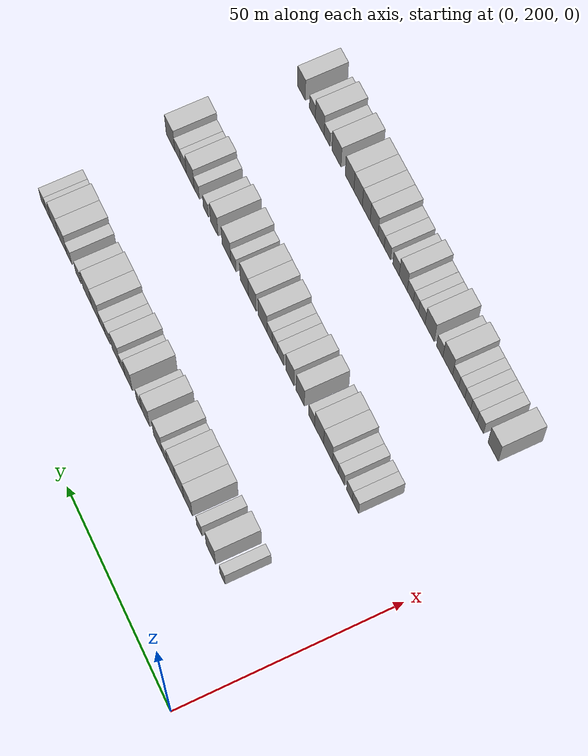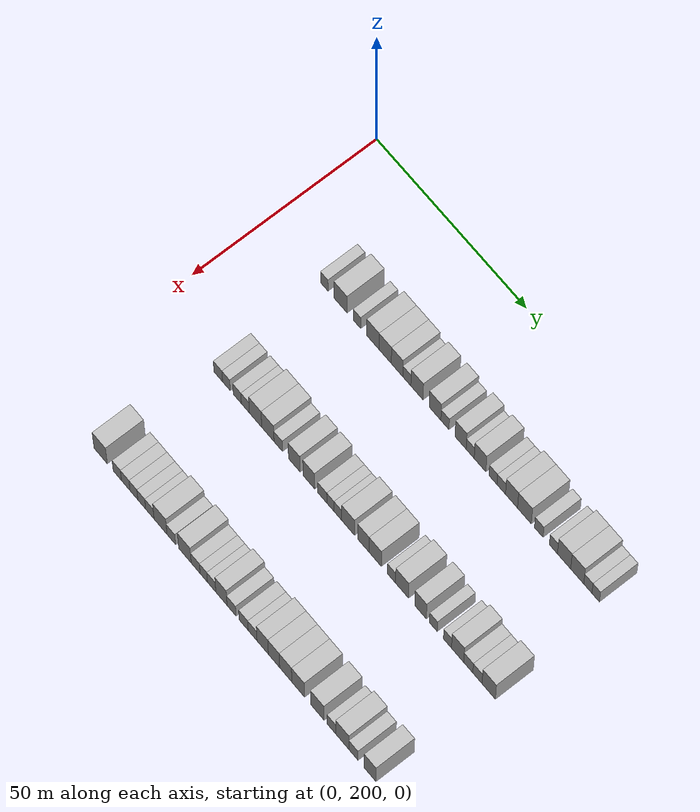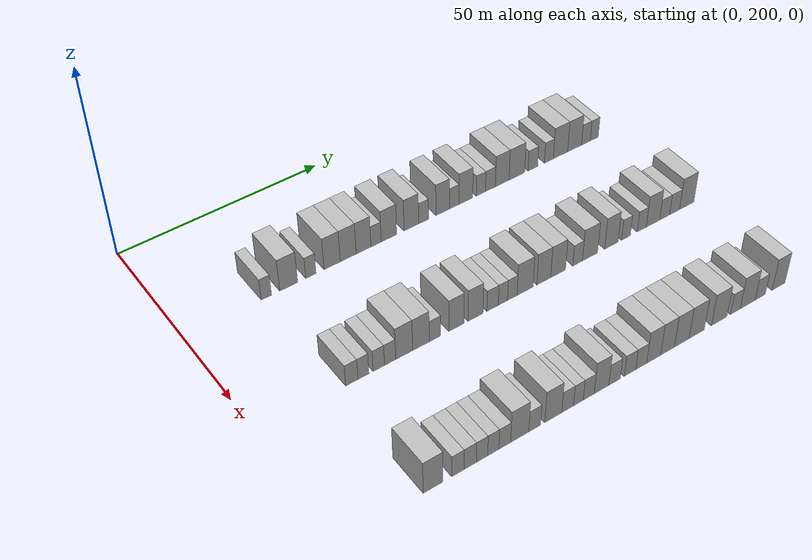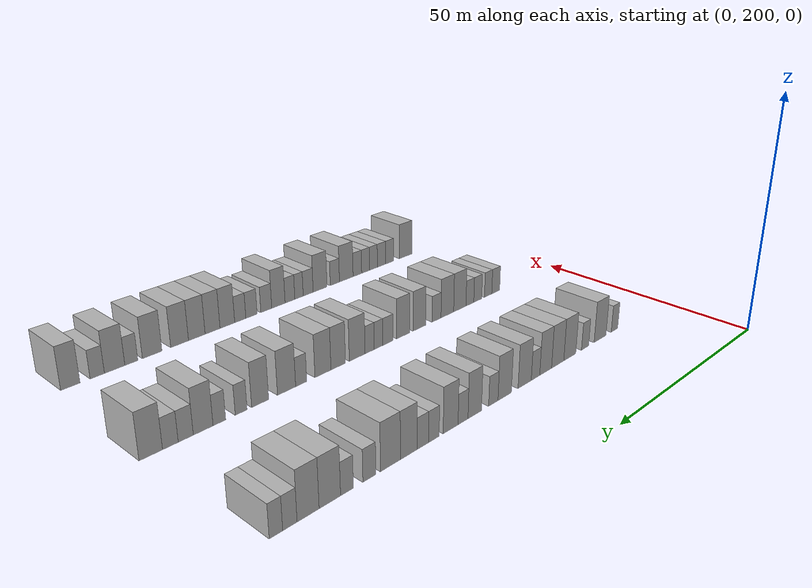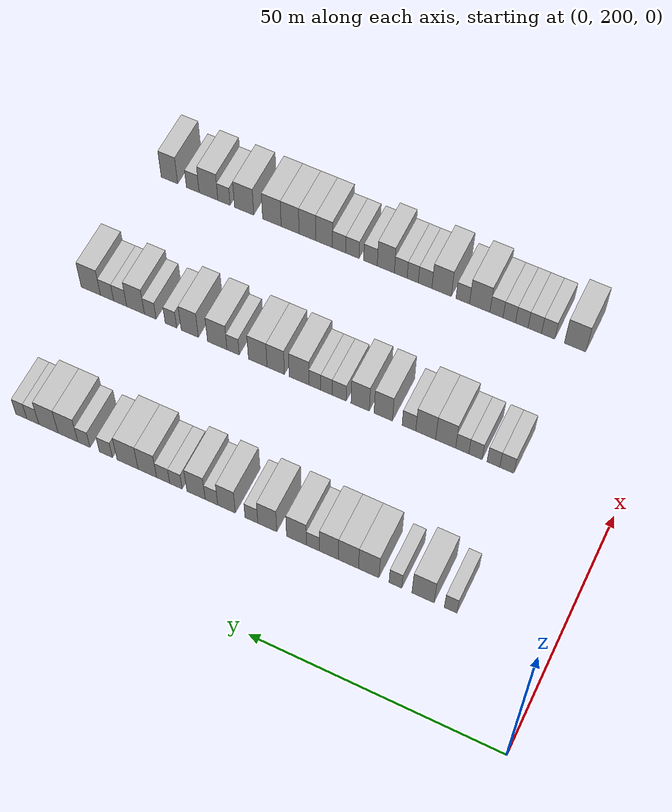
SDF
<sdf version="1.6">
 <world name="default">
  <model name="building_167">
   <static>1</static>
   <pose>25.0000 219.5686 0 0.000000 0.000000 0.000000</pose>
   <link name="link">
    <pose>0 0 3.00 0 0 0</pose>
    <collision name="collision"><geometry><box><size>10.0000 2.4940 6.0000</size></box></geometry></collision>
    <visual name="visual">
     <cast_shadows>0</cast_shadows>
     <geometry><box><size>10.0000 2.4940 6.0000</size></box></geometry>
     <material>
      <script>
       <uri>model://HANNAS_wall/materials/scripts</uri>
       <uri>model://HANNAS_wall/materials/textures</uri>
       <name>vrc/HANNAS_wall</name>
      </script>
     </material>
    </visual>
   </link>
  </model>
  <model name="building_168">
   <static>1</static>
   <pose>25.0000 225.0150 0 0.000000 0.000000 0.000000</pose>
   <link name="link">
    <pose>0 0 4.50 0 0 0</pose>
    <collision name="collision"><geometry><box><size>10.0000 4.3989 9.0000</size></box></geometry></collision>
    <visual name="visual">
     <cast_shadows>0</cast_shadows>
     <geometry><box><size>10.0000 4.3989 9.0000</size></box></geometry>
     <material>
      <script>
       <uri>model://HANNAS_wall/materials/scripts</uri>
       <uri>model://HANNAS_wall/materials/textures</uri>
       <name>vrc/HANNAS_wall</name>
      </script>
     </material>
    </visual>
   </link>
  </model>
  <model name="building_169">
   <static>1</static>
   <pose>25.0000 230.4870 0 0.000000 0.000000 0.000000</pose>
   <link name="link">
    <pose>0 0 3.00 0 0 0</pose>
    <collision name="collision"><geometry><box><size>10.0000 2.5451 6.0000</size></box></geometry></collision>
    <visual name="visual">
     <cast_shadows>0</cast_shadows>
     <geometry><box><size>10.0000 2.5451 6.0000</size></box></geometry>
     <material>
      <script>
       <uri>model://HANNAS_wall/materials/scripts</uri>
       <uri>model://HANNAS_wall/materials/textures</uri>
       <name>vrc/HANNAS_wall</name>
      </script>
     </material>
    </visual>
   </link>
  </model>
  <model name="building_170">
   <static>1</static>
   <pose>25.0000 235.8158 0 0.000000 0.000000 0.000000</pose>
   <link name="link">
    <pose>0 0 4.50 0 0 0</pose>
    <collision name="collision"><geometry><box><size>10.0000 4.1124 9.0000</size></box></geometry></collision>
    <visual name="visual">
     <cast_shadows>0</cast_shadows>
     <geometry><box><size>10.0000 4.1124 9.0000</size></box></geometry>
     <material>
      <script>
       <uri>model://HANNAS_wall/materials/scripts</uri>
       <uri>model://HANNAS_wall/materials/textures</uri>
       <name>vrc/HANNAS_wall</name>
      </script>
     </material>
    </visual>
   </link>
  </model>
  <model name="building_171">
   <static>1</static>
   <pose>25.0000 239.9022 0 0.000000 0.000000 0.000000</pose>
   <link name="link">
    <pose>0 0 4.50 0 0 0</pose>
    <collision name="collision"><geometry><box><size>10.0000 4.0605 9.0000</size></box></geometry></collision>
    <visual name="visual">
     <cast_shadows>0</cast_shadows>
     <geometry><box><size>10.0000 4.0605 9.0000</size></box></geometry>
     <material>
      <script>
       <uri>model://HANNAS_wall/materials/scripts</uri>
       <uri>model://HANNAS_wall/materials/textures</uri>
       <name>vrc/HANNAS_wall</name>
      </script>
     </material>
    </visual>
   </link>
  </model>
  <model name="building_172">
   <static>1</static>
   <pose>25.0000 243.8389 0 0.000000 0.000000 0.000000</pose>
   <link name="link">
    <pose>0 0 4.50 0 0 0</pose>
    <collision name="collision"><geometry><box><size>10.0000 3.8128 9.0000</size></box></geometry></collision>
    <visual name="visual">
     <cast_shadows>0</cast_shadows>
     <geometry><box><size>10.0000 3.8128 9.0000</size></box></geometry>
     <material>
      <script>
       <uri>model://HANNAS_wall/materials/scripts</uri>
       <uri>model://HANNAS_wall/materials/textures</uri>
       <name>vrc/HANNAS_wall</name>
      </script>
     </material>
    </visual>
   </link>
  </model>
  <model name="building_173">
   <static>1</static>
   <pose>25.0000 247.0756 0 0.000000 0.000000 0.000000</pose>
   <link name="link">
    <pose>0 0 3.00 0 0 0</pose>
    <collision name="collision"><geometry><box><size>10.0000 2.6605 6.0000</size></box></geometry></collision>
    <visual name="visual">
     <cast_shadows>0</cast_shadows>
     <geometry><box><size>10.0000 2.6605 6.0000</size></box></geometry>
     <material>
      <script>
       <uri>model://HANNAS_wall/materials/scripts</uri>
       <uri>model://HANNAS_wall/materials/textures</uri>
       <name>vrc/HANNAS_wall</name>
      </script>
     </material>
    </visual>
   </link>
  </model>
  <model name="building_174">
   <static>1</static>
   <pose>25.0000 250.4278 0 0.000000 0.000000 0.000000</pose>
   <link name="link">
    <pose>0 0 4.50 0 0 0</pose>
    <collision name="collision"><geometry><box><size>10.0000 4.0439 9.0000</size></box></geometry></collision>
    <visual name="visual">
     <cast_shadows>0</cast_shadows>
     <geometry><box><size>10.0000 4.0439 9.0000</size></box></geometry>
     <material>
      <script>
       <uri>model://HANNAS_wall/materials/scripts</uri>
       <uri>model://HANNAS_wall/materials/textures</uri>
       <name>vrc/HANNAS_wall</name>
      </script>
     </material>
    </visual>
   </link>
  </model>
  <model name="building_175">
   <static>1</static>
   <pose>25.0000 256.3951 0 0.000000 0.000000 0.000000</pose>
   <link name="link">
    <pose>0 0 4.50 0 0 0</pose>
    <collision name="collision"><geometry><box><size>10.0000 3.8908 9.0000</size></box></geometry></collision>
    <visual name="visual">
     <cast_shadows>0</cast_shadows>
     <geometry><box><size>10.0000 3.8908 9.0000</size></box></geometry>
     <material>
      <script>
       <uri>model://HANNAS_wall/materials/scripts</uri>
       <uri>model://HANNAS_wall/materials/textures</uri>
       <name>vrc/HANNAS_wall</name>
      </script>
     </material>
    </visual>
   </link>
  </model>
  <model name="building_176">
   <static>1</static>
   <pose>25.0000 259.6638 0 0.000000 0.000000 0.000000</pose>
   <link name="link">
    <pose>0 0 3.00 0 0 0</pose>
    <collision name="collision"><geometry><box><size>10.0000 2.6465 6.0000</size></box></geometry></collision>
    <visual name="visual">
     <cast_shadows>0</cast_shadows>
     <geometry><box><size>10.0000 2.6465 6.0000</size></box></geometry>
     <material>
      <script>
       <uri>model://HANNAS_wall/materials/scripts</uri>
       <uri>model://HANNAS_wall/materials/textures</uri>
       <name>vrc/HANNAS_wall</name>
      </script>
     </material>
    </visual>
   </link>
  </model>
  <model name="building_177">
   <static>1</static>
   <pose>25.0000 264.8123 0 0.000000 0.000000 0.000000</pose>
   <link name="link">
    <pose>0 0 4.50 0 0 0</pose>
    <collision name="collision"><geometry><box><size>10.0000 3.6504 9.0000</size></box></geometry></collision>
    <visual name="visual">
     <cast_shadows>0</cast_shadows>
     <geometry><box><size>10.0000 3.6504 9.0000</size></box></geometry>
     <material>
      <script>
       <uri>model://HANNAS_wall/materials/scripts</uri>
       <uri>model://HANNAS_wall/materials/textures</uri>
       <name>vrc/HANNAS_wall</name>
      </script>
     </material>
    </visual>
   </link>
  </model>
  <model name="building_178">
   <static>1</static>
   <pose>25.0000 267.9505 0 0.000000 0.000000 0.000000</pose>
   <link name="link">
    <pose>0 0 3.00 0 0 0</pose>
    <collision name="collision"><geometry><box><size>10.0000 2.6260 6.0000</size></box></geometry></collision>
    <visual name="visual">
     <cast_shadows>0</cast_shadows>
     <geometry><box><size>10.0000 2.6260 6.0000</size></box></geometry>
     <material>
      <script>
       <uri>model://HANNAS_wall/materials/scripts</uri>
       <uri>model://HANNAS_wall/materials/textures</uri>
       <name>vrc/HANNAS_wall</name>
      </script>
     </material>
    </visual>
   </link>
  </model>
  <model name="building_179">
   <static>1</static>
   <pose>25.0000 271.1804 0 0.000000 0.000000 0.000000</pose>
   <link name="link">
    <pose>0 0 4.50 0 0 0</pose>
    <collision name="collision"><geometry><box><size>10.0000 3.8338 9.0000</size></box></geometry></collision>
    <visual name="visual">
     <cast_shadows>0</cast_shadows>
     <geometry><box><size>10.0000 3.8338 9.0000</size></box></geometry>
     <material>
      <script>
       <uri>model://HANNAS_wall/materials/scripts</uri>
       <uri>model://HANNAS_wall/materials/textures</uri>
       <name>vrc/HANNAS_wall</name>
      </script>
     </material>
    </visual>
   </link>
  </model>
  <model name="building_180">
   <static>1</static>
   <pose>25.0000 275.4002 0 0.000000 0.000000 0.000000</pose>
   <link name="link">
    <pose>0 0 3.00 0 0 0</pose>
    <collision name="collision"><geometry><box><size>10.0000 2.6059 6.0000</size></box></geometry></collision>
    <visual name="visual">
     <cast_shadows>0</cast_shadows>
     <geometry><box><size>10.0000 2.6059 6.0000</size></box></geometry>
     <material>
      <script>
       <uri>model://HANNAS_wall/materials/scripts</uri>
       <uri>model://HANNAS_wall/materials/textures</uri>
       <name>vrc/HANNAS_wall</name>
      </script>
     </material>
    </visual>
   </link>
  </model>
  <model name="building_181">
   <static>1</static>
   <pose>25.0000 278.0918 0 0.000000 0.000000 0.000000</pose>
   <link name="link">
    <pose>0 0 3.00 0 0 0</pose>
    <collision name="collision"><geometry><box><size>10.0000 2.7773 6.0000</size></box></geometry></collision>
    <visual name="visual">
     <cast_shadows>0</cast_shadows>
     <geometry><box><size>10.0000 2.7773 6.0000</size></box></geometry>
     <material>
      <script>
       <uri>model://HANNAS_wall/materials/scripts</uri>
       <uri>model://HANNAS_wall/materials/textures</uri>
       <name>vrc/HANNAS_wall</name>
      </script>
     </material>
    </visual>
   </link>
  </model>
  <model name="building_182">
   <static>1</static>
   <pose>25.0000 281.4405 0 0.000000 0.000000 0.000000</pose>
   <link name="link">
    <pose>0 0 4.50 0 0 0</pose>
    <collision name="collision"><geometry><box><size>10.0000 3.9202 9.0000</size></box></geometry></collision>
    <visual name="visual">
     <cast_shadows>0</cast_shadows>
     <geometry><box><size>10.0000 3.9202 9.0000</size></box></geometry>
     <material>
      <script>
       <uri>model://HANNAS_wall/materials/scripts</uri>
       <uri>model://HANNAS_wall/materials/textures</uri>
       <name>vrc/HANNAS_wall</name>
      </script>
     </material>
    </visual>
   </link>
  </model>
  <model name="building_183">
   <static>1</static>
   <pose>25.0000 285.6413 0 0.000000 0.000000 0.000000</pose>
   <link name="link">
    <pose>0 0 4.50 0 0 0</pose>
    <collision name="collision"><geometry><box><size>10.0000 4.4814 9.0000</size></box></geometry></collision>
    <visual name="visual">
     <cast_shadows>0</cast_shadows>
     <geometry><box><size>10.0000 4.4814 9.0000</size></box></geometry>
     <material>
      <script>
       <uri>model://HANNAS_wall/materials/scripts</uri>
       <uri>model://HANNAS_wall/materials/textures</uri>
       <name>vrc/HANNAS_wall</name>
      </script>
     </material>
    </visual>
   </link>
  </model>
  <model name="building_184">
   <static>1</static>
   <pose>25.0000 290.2833 0 0.000000 0.000000 0.000000</pose>
   <link name="link">
    <pose>0 0 3.00 0 0 0</pose>
    <collision name="collision"><geometry><box><size>10.0000 2.8026 6.0000</size></box></geometry></collision>
    <visual name="visual">
     <cast_shadows>0</cast_shadows>
     <geometry><box><size>10.0000 2.8026 6.0000</size></box></geometry>
     <material>
      <script>
       <uri>model://HANNAS_wall/materials/scripts</uri>
       <uri>model://HANNAS_wall/materials/textures</uri>
       <name>vrc/HANNAS_wall</name>
      </script>
     </material>
    </visual>
   </link>
  </model>
  <model name="building_185">
   <static>1</static>
   <pose>25.0000 295.0021 0 0.000000 0.000000 0.000000</pose>
   <link name="link">
    <pose>0 0 3.00 0 0 0</pose>
    <collision name="collision"><geometry><box><size>10.0000 2.6349 6.0000</size></box></geometry></collision>
    <visual name="visual">
     <cast_shadows>0</cast_shadows>
     <geometry><box><size>10.0000 2.6349 6.0000</size></box></geometry>
     <material>
      <script>
       <uri>model://HANNAS_wall/materials/scripts</uri>
       <uri>model://HANNAS_wall/materials/textures</uri>
       <name>vrc/HANNAS_wall</name>
      </script>
     </material>
    </visual>
   </link>
  </model>
  <model name="building_186">
   <static>1</static>
   <pose>25.0000 298.4520 0 0.000000 0.000000 0.000000</pose>
   <link name="link">
    <pose>0 0 4.50 0 0 0</pose>
    <collision name="collision"><geometry><box><size>10.0000 4.2648 9.0000</size></box></geometry></collision>
    <visual name="visual">
     <cast_shadows>0</cast_shadows>
     <geometry><box><size>10.0000 4.2648 9.0000</size></box></geometry>
     <material>
      <script>
       <uri>model://HANNAS_wall/materials/scripts</uri>
       <uri>model://HANNAS_wall/materials/textures</uri>
       <name>vrc/HANNAS_wall</name>
      </script>
     </material>
    </visual>
   </link>
  </model>
  <model name="building_187">
   <static>1</static>
   <pose>25.0000 302.6818 0 0.000000 0.000000 0.000000</pose>
   <link name="link">
    <pose>0 0 4.50 0 0 0</pose>
    <collision name="collision"><geometry><box><size>10.0000 4.1949 9.0000</size></box></geometry></collision>
    <visual name="visual">
     <cast_shadows>0</cast_shadows>
     <geometry><box><size>10.0000 4.1949 9.0000</size></box></geometry>
     <material>
      <script>
       <uri>model://HANNAS_wall/materials/scripts</uri>
       <uri>model://HANNAS_wall/materials/textures</uri>
       <name>vrc/HANNAS_wall</name>
      </script>
     </material>
    </visual>
   </link>
  </model>
  <model name="building_188">
   <static>1</static>
   <pose>25.0000 306.1009 0 0.000000 0.000000 0.000000</pose>
   <link name="link">
    <pose>0 0 3.00 0 0 0</pose>
    <collision name="collision"><geometry><box><size>10.0000 2.6432 6.0000</size></box></geometry></collision>
    <visual name="visual">
     <cast_shadows>0</cast_shadows>
     <geometry><box><size>10.0000 2.6432 6.0000</size></box></geometry>
     <material>
      <script>
       <uri>model://HANNAS_wall/materials/scripts</uri>
       <uri>model://HANNAS_wall/materials/textures</uri>
       <name>vrc/HANNAS_wall</name>
      </script>
     </material>
    </visual>
   </link>
  </model>
  <model name="building_189">
   <static>1</static>
   <pose>25.0000 308.6357 0 0.000000 0.000000 0.000000</pose>
   <link name="link">
    <pose>0 0 3.00 0 0 0</pose>
    <collision name="collision"><geometry><box><size>10.0000 2.4263 6.0000</size></box></geometry></collision>
    <visual name="visual">
     <cast_shadows>0</cast_shadows>
     <geometry><box><size>10.0000 2.4263 6.0000</size></box></geometry>
     <material>
      <script>
       <uri>model://HANNAS_wall/materials/scripts</uri>
       <uri>model://HANNAS_wall/materials/textures</uri>
       <name>vrc/HANNAS_wall</name>
      </script>
     </material>
    </visual>
   </link>
  </model>
  <model name="building_394">
   <static>1</static>
   <pose>55.0000 221.5178 0 0.000000 0.000000 0.000000</pose>
   <link name="link">
    <pose>0 0 3.00 0 0 0</pose>
    <collision name="collision"><geometry><box><size>10.0000 2.8680 6.0000</size></box></geometry></collision>
    <visual name="visual">
     <cast_shadows>0</cast_shadows>
     <geometry><box><size>10.0000 2.8680 6.0000</size></box></geometry>
     <material>
      <script>
       <uri>model://HANNAS_wall/materials/scripts</uri>
       <uri>model://HANNAS_wall/materials/textures</uri>
       <name>vrc/HANNAS_wall</name>
      </script>
     </material>
    </visual>
   </link>
  </model>
  <model name="building_395">
   <static>1</static>
   <pose>55.0000 224.2567 0 0.000000 0.000000 0.000000</pose>
   <link name="link">
    <pose>0 0 3.00 0 0 0</pose>
    <collision name="collision"><geometry><box><size>10.0000 2.6098 6.0000</size></box></geometry></collision>
    <visual name="visual">
     <cast_shadows>0</cast_shadows>
     <geometry><box><size>10.0000 2.6098 6.0000</size></box></geometry>
     <material>
      <script>
       <uri>model://HANNAS_wall/materials/scripts</uri>
       <uri>model://HANNAS_wall/materials/textures</uri>
       <name>vrc/HANNAS_wall</name>
      </script>
     </material>
    </visual>
   </link>
  </model>
  <model name="building_396">
   <static>1</static>
   <pose>55.0000 227.9256 0 0.000000 0.000000 0.000000</pose>
   <link name="link">
    <pose>0 0 3.00 0 0 0</pose>
    <collision name="collision"><geometry><box><size>10.0000 2.7281 6.0000</size></box></geometry></collision>
    <visual name="visual">
     <cast_shadows>0</cast_shadows>
     <geometry><box><size>10.0000 2.7281 6.0000</size></box></geometry>
     <material>
      <script>
       <uri>model://HANNAS_wall/materials/scripts</uri>
       <uri>model://HANNAS_wall/materials/textures</uri>
       <name>vrc/HANNAS_wall</name>
      </script>
     </material>
    </visual>
   </link>
  </model>
  <model name="building_397">
   <static>1</static>
   <pose>55.0000 230.6357 0 0.000000 0.000000 0.000000</pose>
   <link name="link">
    <pose>0 0 3.00 0 0 0</pose>
    <collision name="collision"><geometry><box><size>10.0000 2.6922 6.0000</size></box></geometry></collision>
    <visual name="visual">
     <cast_shadows>0</cast_shadows>
     <geometry><box><size>10.0000 2.6922 6.0000</size></box></geometry>
     <material>
      <script>
       <uri>model://HANNAS_wall/materials/scripts</uri>
       <uri>model://HANNAS_wall/materials/textures</uri>
       <name>vrc/HANNAS_wall</name>
      </script>
     </material>
    </visual>
   </link>
  </model>
  <model name="building_398">
   <static>1</static>
   <pose>55.0000 234.0388 0 0.000000 0.000000 0.000000</pose>
   <link name="link">
    <pose>0 0 4.50 0 0 0</pose>
    <collision name="collision"><geometry><box><size>10.0000 4.1140 9.0000</size></box></geometry></collision>
    <visual name="visual">
     <cast_shadows>0</cast_shadows>
     <geometry><box><size>10.0000 4.1140 9.0000</size></box></geometry>
     <material>
      <script>
       <uri>model://HANNAS_wall/materials/scripts</uri>
       <uri>model://HANNAS_wall/materials/textures</uri>
       <name>vrc/HANNAS_wall</name>
      </script>
     </material>
    </visual>
   </link>
  </model>
  <model name="building_399">
   <static>1</static>
   <pose>55.0000 238.1542 0 0.000000 0.000000 0.000000</pose>
   <link name="link">
    <pose>0 0 4.50 0 0 0</pose>
    <collision name="collision"><geometry><box><size>10.0000 4.1167 9.0000</size></box></geometry></collision>
    <visual name="visual">
     <cast_shadows>0</cast_shadows>
     <geometry><box><size>10.0000 4.1167 9.0000</size></box></geometry>
     <material>
      <script>
       <uri>model://HANNAS_wall/materials/scripts</uri>
       <uri>model://HANNAS_wall/materials/textures</uri>
       <name>vrc/HANNAS_wall</name>
      </script>
     </material>
    </visual>
   </link>
  </model>
  <model name="building_400">
   <static>1</static>
   <pose>55.0000 241.6304 0 0.000000 0.000000 0.000000</pose>
   <link name="link">
    <pose>0 0 3.00 0 0 0</pose>
    <collision name="collision"><geometry><box><size>10.0000 2.8357 6.0000</size></box></geometry></collision>
    <visual name="visual">
     <cast_shadows>0</cast_shadows>
     <geometry><box><size>10.0000 2.8357 6.0000</size></box></geometry>
     <material>
      <script>
       <uri>model://HANNAS_wall/materials/scripts</uri>
       <uri>model://HANNAS_wall/materials/textures</uri>
       <name>vrc/HANNAS_wall</name>
      </script>
     </material>
    </visual>
   </link>
  </model>
  <model name="building_401">
   <static>1</static>
   <pose>55.0000 246.9791 0 0.000000 0.000000 0.000000</pose>
   <link name="link">
    <pose>0 0 4.50 0 0 0</pose>
    <collision name="collision"><geometry><box><size>10.0000 3.8617 9.0000</size></box></geometry></collision>
    <visual name="visual">
     <cast_shadows>0</cast_shadows>
     <geometry><box><size>10.0000 3.8617 9.0000</size></box></geometry>
     <material>
      <script>
       <uri>model://HANNAS_wall/materials/scripts</uri>
       <uri>model://HANNAS_wall/materials/textures</uri>
       <name>vrc/HANNAS_wall</name>
      </script>
     </material>
    </visual>
   </link>
  </model>
  <model name="building_402">
   <static>1</static>
   <pose>55.0000 251.8341 0 0.000000 0.000000 0.000000</pose>
   <link name="link">
    <pose>0 0 4.50 0 0 0</pose>
    <collision name="collision"><geometry><box><size>10.0000 3.8484 9.0000</size></box></geometry></collision>
    <visual name="visual">
     <cast_shadows>0</cast_shadows>
     <geometry><box><size>10.0000 3.8484 9.0000</size></box></geometry>
     <material>
      <script>
       <uri>model://HANNAS_wall/materials/scripts</uri>
       <uri>model://HANNAS_wall/materials/textures</uri>
       <name>vrc/HANNAS_wall</name>
      </script>
     </material>
    </visual>
   </link>
  </model>
  <model name="building_403">
   <static>1</static>
   <pose>55.0000 256.2528 0 0.000000 0.000000 0.000000</pose>
   <link name="link">
    <pose>0 0 3.00 0 0 0</pose>
    <collision name="collision"><geometry><box><size>10.0000 2.9889 6.0000</size></box></geometry></collision>
    <visual name="visual">
     <cast_shadows>0</cast_shadows>
     <geometry><box><size>10.0000 2.9889 6.0000</size></box></geometry>
     <material>
      <script>
       <uri>model://HANNAS_wall/materials/scripts</uri>
       <uri>model://HANNAS_wall/materials/textures</uri>
       <name>vrc/HANNAS_wall</name>
      </script>
     </material>
    </visual>
   </link>
  </model>
  <model name="building_404">
   <static>1</static>
   <pose>55.0000 258.9520 0 0.000000 0.000000 0.000000</pose>
   <link name="link">
    <pose>0 0 3.00 0 0 0</pose>
    <collision name="collision"><geometry><box><size>10.0000 2.4095 6.0000</size></box></geometry></collision>
    <visual name="visual">
     <cast_shadows>0</cast_shadows>
     <geometry><box><size>10.0000 2.4095 6.0000</size></box></geometry>
     <material>
      <script>
       <uri>model://HANNAS_wall/materials/scripts</uri>
       <uri>model://HANNAS_wall/materials/textures</uri>
       <name>vrc/HANNAS_wall</name>
      </script>
     </material>
    </visual>
   </link>
  </model>
  <model name="building_405">
   <static>1</static>
   <pose>55.0000 261.4152 0 0.000000 0.000000 0.000000</pose>
   <link name="link">
    <pose>0 0 3.00 0 0 0</pose>
    <collision name="collision"><geometry><box><size>10.0000 2.5169 6.0000</size></box></geometry></collision>
    <visual name="visual">
     <cast_shadows>0</cast_shadows>
     <geometry><box><size>10.0000 2.5169 6.0000</size></box></geometry>
     <material>
      <script>
       <uri>model://HANNAS_wall/materials/scripts</uri>
       <uri>model://HANNAS_wall/materials/textures</uri>
       <name>vrc/HANNAS_wall</name>
      </script>
     </material>
    </visual>
   </link>
  </model>
  <model name="building_406">
   <static>1</static>
   <pose>55.0000 264.7932 0 0.000000 0.000000 0.000000</pose>
   <link name="link">
    <pose>0 0 4.50 0 0 0</pose>
    <collision name="collision"><geometry><box><size>10.0000 4.2391 9.0000</size></box></geometry></collision>
    <visual name="visual">
     <cast_shadows>0</cast_shadows>
     <geometry><box><size>10.0000 4.2391 9.0000</size></box></geometry>
     <material>
      <script>
       <uri>model://HANNAS_wall/materials/scripts</uri>
       <uri>model://HANNAS_wall/materials/textures</uri>
       <name>vrc/HANNAS_wall</name>
      </script>
     </material>
    </visual>
   </link>
  </model>
  <model name="building_407">
   <static>1</static>
   <pose>55.0000 269.7843 0 0.000000 0.000000 0.000000</pose>
   <link name="link">
    <pose>0 0 4.50 0 0 0</pose>
    <collision name="collision"><geometry><box><size>10.0000 3.7432 9.0000</size></box></geometry></collision>
    <visual name="visual">
     <cast_shadows>0</cast_shadows>
     <geometry><box><size>10.0000 3.7432 9.0000</size></box></geometry>
     <material>
      <script>
       <uri>model://HANNAS_wall/materials/scripts</uri>
       <uri>model://HANNAS_wall/materials/textures</uri>
       <name>vrc/HANNAS_wall</name>
      </script>
     </material>
    </visual>
   </link>
  </model>
  <model name="building_408">
   <static>1</static>
   <pose>55.0000 273.6651 0 0.000000 0.000000 0.000000</pose>
   <link name="link">
    <pose>0 0 4.50 0 0 0</pose>
    <collision name="collision"><geometry><box><size>10.0000 4.0183 9.0000</size></box></geometry></collision>
    <visual name="visual">
     <cast_shadows>0</cast_shadows>
     <geometry><box><size>10.0000 4.0183 9.0000</size></box></geometry>
     <material>
      <script>
       <uri>model://HANNAS_wall/materials/scripts</uri>
       <uri>model://HANNAS_wall/materials/textures</uri>
       <name>vrc/HANNAS_wall</name>
      </script>
     </material>
    </visual>
   </link>
  </model>
  <model name="building_409">
   <static>1</static>
   <pose>55.0000 279.0049 0 0.000000 0.000000 0.000000</pose>
   <link name="link">
    <pose>0 0 3.00 0 0 0</pose>
    <collision name="collision"><geometry><box><size>10.0000 2.6613 6.0000</size></box></geometry></collision>
    <visual name="visual">
     <cast_shadows>0</cast_shadows>
     <geometry><box><size>10.0000 2.6613 6.0000</size></box></geometry>
     <material>
      <script>
       <uri>model://HANNAS_wall/materials/scripts</uri>
       <uri>model://HANNAS_wall/materials/textures</uri>
       <name>vrc/HANNAS_wall</name>
      </script>
     </material>
    </visual>
   </link>
  </model>
  <model name="building_410">
   <static>1</static>
   <pose>55.0000 282.4552 0 0.000000 0.000000 0.000000</pose>
   <link name="link">
    <pose>0 0 4.50 0 0 0</pose>
    <collision name="collision"><geometry><box><size>10.0000 4.2394 9.0000</size></box></geometry></collision>
    <visual name="visual">
     <cast_shadows>0</cast_shadows>
     <geometry><box><size>10.0000 4.2394 9.0000</size></box></geometry>
     <material>
      <script>
       <uri>model://HANNAS_wall/materials/scripts</uri>
       <uri>model://HANNAS_wall/materials/textures</uri>
       <name>vrc/HANNAS_wall</name>
      </script>
     </material>
    </visual>
   </link>
  </model>
  <model name="building_411">
   <static>1</static>
   <pose>55.0000 288.4654 0 0.000000 0.000000 0.000000</pose>
   <link name="link">
    <pose>0 0 4.50 0 0 0</pose>
    <collision name="collision"><geometry><box><size>10.0000 3.7809 9.0000</size></box></geometry></collision>
    <visual name="visual">
     <cast_shadows>0</cast_shadows>
     <geometry><box><size>10.0000 3.7809 9.0000</size></box></geometry>
     <material>
      <script>
       <uri>model://HANNAS_wall/materials/scripts</uri>
       <uri>model://HANNAS_wall/materials/textures</uri>
       <name>vrc/HANNAS_wall</name>
      </script>
     </material>
    </visual>
   </link>
  </model>
  <model name="building_412">
   <static>1</static>
   <pose>55.0000 292.6240 0 0.000000 0.000000 0.000000</pose>
   <link name="link">
    <pose>0 0 3.00 0 0 0</pose>
    <collision name="collision"><geometry><box><size>10.0000 2.5365 6.0000</size></box></geometry></collision>
    <visual name="visual">
     <cast_shadows>0</cast_shadows>
     <geometry><box><size>10.0000 2.5365 6.0000</size></box></geometry>
     <material>
      <script>
       <uri>model://HANNAS_wall/materials/scripts</uri>
       <uri>model://HANNAS_wall/materials/textures</uri>
       <name>vrc/HANNAS_wall</name>
      </script>
     </material>
    </visual>
   </link>
  </model>
  <model name="building_413">
   <static>1</static>
   <pose>55.0000 297.1989 0 0.000000 0.000000 0.000000</pose>
   <link name="link">
    <pose>0 0 3.00 0 0 0</pose>
    <collision name="collision"><geometry><box><size>10.0000 2.6134 6.0000</size></box></geometry></collision>
    <visual name="visual">
     <cast_shadows>0</cast_shadows>
     <geometry><box><size>10.0000 2.6134 6.0000</size></box></geometry>
     <material>
      <script>
       <uri>model://HANNAS_wall/materials/scripts</uri>
       <uri>model://HANNAS_wall/materials/textures</uri>
       <name>vrc/HANNAS_wall</name>
      </script>
     </material>
    </visual>
   </link>
  </model>
  <model name="building_414">
   <static>1</static>
   <pose>55.0000 300.4805 0 0.000000 0.000000 0.000000</pose>
   <link name="link">
    <pose>0 0 4.50 0 0 0</pose>
    <collision name="collision"><geometry><box><size>10.0000 3.9497 9.0000</size></box></geometry></collision>
    <visual name="visual">
     <cast_shadows>0</cast_shadows>
     <geometry><box><size>10.0000 3.9497 9.0000</size></box></geometry>
     <material>
      <script>
       <uri>model://HANNAS_wall/materials/scripts</uri>
       <uri>model://HANNAS_wall/materials/textures</uri>
       <name>vrc/HANNAS_wall</name>
      </script>
     </material>
    </visual>
   </link>
  </model>
  <model name="building_415">
   <static>1</static>
   <pose>55.0000 303.9218 0 0.000000 0.000000 0.000000</pose>
   <link name="link">
    <pose>0 0 3.00 0 0 0</pose>
    <collision name="collision"><geometry><box><size>10.0000 2.9329 6.0000</size></box></geometry></collision>
    <visual name="visual">
     <cast_shadows>0</cast_shadows>
     <geometry><box><size>10.0000 2.9329 6.0000</size></box></geometry>
     <material>
      <script>
       <uri>model://HANNAS_wall/materials/scripts</uri>
       <uri>model://HANNAS_wall/materials/textures</uri>
       <name>vrc/HANNAS_wall</name>
      </script>
     </material>
    </visual>
   </link>
  </model>
  <model name="building_416">
   <static>1</static>
   <pose>55.0000 306.8713 0 0.000000 0.000000 0.000000</pose>
   <link name="link">
    <pose>0 0 3.00 0 0 0</pose>
    <collision name="collision"><geometry><box><size>10.0000 2.9661 6.0000</size></box></geometry></collision>
    <visual name="visual">
     <cast_shadows>0</cast_shadows>
     <geometry><box><size>10.0000 2.9661 6.0000</size></box></geometry>
     <material>
      <script>
       <uri>model://HANNAS_wall/materials/scripts</uri>
       <uri>model://HANNAS_wall/materials/textures</uri>
       <name>vrc/HANNAS_wall</name>
      </script>
     </material>
    </visual>
   </link>
  </model>
  <model name="building_417">
   <static>1</static>
   <pose>55.0000 310.5092 0 0.000000 0.000000 0.000000</pose>
   <link name="link">
    <pose>0 0 4.50 0 0 0</pose>
    <collision name="collision"><geometry><box><size>10.0000 4.3097 9.0000</size></box></geometry></collision>
    <visual name="visual">
     <cast_shadows>0</cast_shadows>
     <geometry><box><size>10.0000 4.3097 9.0000</size></box></geometry>
     <material>
      <script>
       <uri>model://HANNAS_wall/materials/scripts</uri>
       <uri>model://HANNAS_wall/materials/textures</uri>
       <name>vrc/HANNAS_wall</name>
      </script>
     </material>
    </visual>
   </link>
  </model>
  <model name="building_612">
   <static>1</static>
   <pose>85.0000 220.0843 0 0.000000 0.000000 0.000000</pose>
   <link name="link">
    <pose>0 0 4.50 0 0 0</pose>
    <collision name="collision"><geometry><box><size>10.0000 4.4817 9.0000</size></box></geometry></collision>
    <visual name="visual">
     <cast_shadows>0</cast_shadows>
     <geometry><box><size>10.0000 4.4817 9.0000</size></box></geometry>
     <material>
      <script>
       <uri>model://HANNAS_wall/materials/scripts</uri>
       <uri>model://HANNAS_wall/materials/textures</uri>
       <name>vrc/HANNAS_wall</name>
      </script>
     </material>
    </visual>
   </link>
  </model>
  <model name="building_613">
   <static>1</static>
   <pose>85.0000 225.7238 0 0.000000 0.000000 0.000000</pose>
   <link name="link">
    <pose>0 0 3.00 0 0 0</pose>
    <collision name="collision"><geometry><box><size>10.0000 2.7973 6.0000</size></box></geometry></collision>
    <visual name="visual">
     <cast_shadows>0</cast_shadows>
     <geometry><box><size>10.0000 2.7973 6.0000</size></box></geometry>
     <material>
      <script>
       <uri>model://HANNAS_wall/materials/scripts</uri>
       <uri>model://HANNAS_wall/materials/textures</uri>
       <name>vrc/HANNAS_wall</name>
      </script>
     </material>
    </visual>
   </link>
  </model>
  <model name="building_614">
   <static>1</static>
   <pose>85.0000 228.5540 0 0.000000 0.000000 0.000000</pose>
   <link name="link">
    <pose>0 0 3.00 0 0 0</pose>
    <collision name="collision"><geometry><box><size>10.0000 2.8632 6.0000</size></box></geometry></collision>
    <visual name="visual">
     <cast_shadows>0</cast_shadows>
     <geometry><box><size>10.0000 2.8632 6.0000</size></box></geometry>
     <material>
      <script>
       <uri>model://HANNAS_wall/materials/scripts</uri>
       <uri>model://HANNAS_wall/materials/textures</uri>
       <name>vrc/HANNAS_wall</name>
      </script>
     </material>
    </visual>
   </link>
  </model>
  <model name="building_615">
   <static>1</static>
   <pose>85.0000 231.3046 0 0.000000 0.000000 0.000000</pose>
   <link name="link">
    <pose>0 0 3.00 0 0 0</pose>
    <collision name="collision"><geometry><box><size>10.0000 2.6379 6.0000</size></box></geometry></collision>
    <visual name="visual">
     <cast_shadows>0</cast_shadows>
     <geometry><box><size>10.0000 2.6379 6.0000</size></box></geometry>
     <material>
      <script>
       <uri>model://HANNAS_wall/materials/scripts</uri>
       <uri>model://HANNAS_wall/materials/textures</uri>
       <name>vrc/HANNAS_wall</name>
      </script>
     </material>
    </visual>
   </link>
  </model>
  <model name="building_616">
   <static>1</static>
   <pose>85.0000 233.9417 0 0.000000 0.000000 0.000000</pose>
   <link name="link">
    <pose>0 0 3.00 0 0 0</pose>
    <collision name="collision"><geometry><box><size>10.0000 2.6363 6.0000</size></box></geometry></collision>
    <visual name="visual">
     <cast_shadows>0</cast_shadows>
     <geometry><box><size>10.0000 2.6363 6.0000</size></box></geometry>
     <material>
      <script>
       <uri>model://HANNAS_wall/materials/scripts</uri>
       <uri>model://HANNAS_wall/materials/textures</uri>
       <name>vrc/HANNAS_wall</name>
      </script>
     </material>
    </visual>
   </link>
  </model>
  <model name="building_617">
   <static>1</static>
   <pose>85.0000 236.6613 0 0.000000 0.000000 0.000000</pose>
   <link name="link">
    <pose>0 0 3.00 0 0 0</pose>
    <collision name="collision"><geometry><box><size>10.0000 2.8029 6.0000</size></box></geometry></collision>
    <visual name="visual">
     <cast_shadows>0</cast_shadows>
     <geometry><box><size>10.0000 2.8029 6.0000</size></box></geometry>
     <material>
      <script>
       <uri>model://HANNAS_wall/materials/scripts</uri>
       <uri>model://HANNAS_wall/materials/textures</uri>
       <name>vrc/HANNAS_wall</name>
      </script>
     </material>
    </visual>
   </link>
  </model>
  <model name="building_618">
   <static>1</static>
   <pose>85.0000 240.2411 0 0.000000 0.000000 0.000000</pose>
   <link name="link">
    <pose>0 0 4.50 0 0 0</pose>
    <collision name="collision"><geometry><box><size>10.0000 4.3567 9.0000</size></box></geometry></collision>
    <visual name="visual">
     <cast_shadows>0</cast_shadows>
     <geometry><box><size>10.0000 4.3567 9.0000</size></box></geometry>
     <material>
      <script>
       <uri>model://HANNAS_wall/materials/scripts</uri>
       <uri>model://HANNAS_wall/materials/textures</uri>
       <name>vrc/HANNAS_wall</name>
      </script>
     </material>
    </visual>
   </link>
  </model>
  <model name="building_619">
   <static>1</static>
   <pose>85.0000 243.8538 0 0.000000 0.000000 0.000000</pose>
   <link name="link">
    <pose>0 0 3.00 0 0 0</pose>
    <collision name="collision"><geometry><box><size>10.0000 2.8686 6.0000</size></box></geometry></collision>
    <visual name="visual">
     <cast_shadows>0</cast_shadows>
     <geometry><box><size>10.0000 2.8686 6.0000</size></box></geometry>
     <material>
      <script>
       <uri>model://HANNAS_wall/materials/scripts</uri>
       <uri>model://HANNAS_wall/materials/textures</uri>
       <name>vrc/HANNAS_wall</name>
      </script>
     </material>
    </visual>
   </link>
  </model>
  <model name="building_620">
   <static>1</static>
   <pose>85.0000 248.3871 0 0.000000 0.000000 0.000000</pose>
   <link name="link">
    <pose>0 0 4.50 0 0 0</pose>
    <collision name="collision"><geometry><box><size>10.0000 4.1980 9.0000</size></box></geometry></collision>
    <visual name="visual">
     <cast_shadows>0</cast_shadows>
     <geometry><box><size>10.0000 4.1980 9.0000</size></box></geometry>
     <material>
      <script>
       <uri>model://HANNAS_wall/materials/scripts</uri>
       <uri>model://HANNAS_wall/materials/textures</uri>
       <name>vrc/HANNAS_wall</name>
      </script>
     </material>
    </visual>
   </link>
  </model>
  <model name="building_621">
   <static>1</static>
   <pose>85.0000 251.9586 0 0.000000 0.000000 0.000000</pose>
   <link name="link">
    <pose>0 0 3.00 0 0 0</pose>
    <collision name="collision"><geometry><box><size>10.0000 2.9450 6.0000</size></box></geometry></collision>
    <visual name="visual">
     <cast_shadows>0</cast_shadows>
     <geometry><box><size>10.0000 2.9450 6.0000</size></box></geometry>
     <material>
      <script>
       <uri>model://HANNAS_wall/materials/scripts</uri>
       <uri>model://HANNAS_wall/materials/textures</uri>
       <name>vrc/HANNAS_wall</name>
      </script>
     </material>
    </visual>
   </link>
  </model>
  <model name="building_622">
   <static>1</static>
   <pose>85.0000 254.6467 0 0.000000 0.000000 0.000000</pose>
   <link name="link">
    <pose>0 0 3.00 0 0 0</pose>
    <collision name="collision"><geometry><box><size>10.0000 2.4311 6.0000</size></box></geometry></collision>
    <visual name="visual">
     <cast_shadows>0</cast_shadows>
     <geometry><box><size>10.0000 2.4311 6.0000</size></box></geometry>
     <material>
      <script>
       <uri>model://HANNAS_wall/materials/scripts</uri>
       <uri>model://HANNAS_wall/materials/textures</uri>
       <name>vrc/HANNAS_wall</name>
      </script>
     </material>
    </visual>
   </link>
  </model>
  <model name="building_623">
   <static>1</static>
   <pose>85.0000 257.2523 0 0.000000 0.000000 0.000000</pose>
   <link name="link">
    <pose>0 0 3.00 0 0 0</pose>
    <collision name="collision"><geometry><box><size>10.0000 2.7800 6.0000</size></box></geometry></collision>
    <visual name="visual">
     <cast_shadows>0</cast_shadows>
     <geometry><box><size>10.0000 2.7800 6.0000</size></box></geometry>
     <material>
      <script>
       <uri>model://HANNAS_wall/materials/scripts</uri>
       <uri>model://HANNAS_wall/materials/textures</uri>
       <name>vrc/HANNAS_wall</name>
      </script>
     </material>
    </visual>
   </link>
  </model>
  <model name="building_624">
   <static>1</static>
   <pose>85.0000 260.5103 0 0.000000 0.000000 0.000000</pose>
   <link name="link">
    <pose>0 0 4.50 0 0 0</pose>
    <collision name="collision"><geometry><box><size>10.0000 3.7362 9.0000</size></box></geometry></collision>
    <visual name="visual">
     <cast_shadows>0</cast_shadows>
     <geometry><box><size>10.0000 3.7362 9.0000</size></box></geometry>
     <material>
      <script>
       <uri>model://HANNAS_wall/materials/scripts</uri>
       <uri>model://HANNAS_wall/materials/textures</uri>
       <name>vrc/HANNAS_wall</name>
      </script>
     </material>
    </visual>
   </link>
  </model>
  <model name="building_625">
   <static>1</static>
   <pose>85.0000 263.8710 0 0.000000 0.000000 0.000000</pose>
   <link name="link">
    <pose>0 0 3.00 0 0 0</pose>
    <collision name="collision"><geometry><box><size>10.0000 2.9851 6.0000</size></box></geometry></collision>
    <visual name="visual">
     <cast_shadows>0</cast_shadows>
     <geometry><box><size>10.0000 2.9851 6.0000</size></box></geometry>
     <material>
      <script>
       <uri>model://HANNAS_wall/materials/scripts</uri>
       <uri>model://HANNAS_wall/materials/textures</uri>
       <name>vrc/HANNAS_wall</name>
      </script>
     </material>
    </visual>
   </link>
  </model>
  <model name="building_626">
   <static>1</static>
   <pose>85.0000 267.8594 0 0.000000 0.000000 0.000000</pose>
   <link name="link">
    <pose>0 0 3.00 0 0 0</pose>
    <collision name="collision"><geometry><box><size>10.0000 2.9919 6.0000</size></box></geometry></collision>
    <visual name="visual">
     <cast_shadows>0</cast_shadows>
     <geometry><box><size>10.0000 2.9919 6.0000</size></box></geometry>
     <material>
      <script>
       <uri>model://HANNAS_wall/materials/scripts</uri>
       <uri>model://HANNAS_wall/materials/textures</uri>
       <name>vrc/HANNAS_wall</name>
      </script>
     </material>
    </visual>
   </link>
  </model>
  <model name="building_627">
   <static>1</static>
   <pose>85.0000 270.8039 0 0.000000 0.000000 0.000000</pose>
   <link name="link">
    <pose>0 0 3.00 0 0 0</pose>
    <collision name="collision"><geometry><box><size>10.0000 2.8971 6.0000</size></box></geometry></collision>
    <visual name="visual">
     <cast_shadows>0</cast_shadows>
     <geometry><box><size>10.0000 2.8971 6.0000</size></box></geometry>
     <material>
      <script>
       <uri>model://HANNAS_wall/materials/scripts</uri>
       <uri>model://HANNAS_wall/materials/textures</uri>
       <name>vrc/HANNAS_wall</name>
      </script>
     </material>
    </visual>
   </link>
  </model>
  <model name="building_628">
   <static>1</static>
   <pose>85.0000 274.1207 0 0.000000 0.000000 0.000000</pose>
   <link name="link">
    <pose>0 0 4.50 0 0 0</pose>
    <collision name="collision"><geometry><box><size>10.0000 3.7365 9.0000</size></box></geometry></collision>
    <visual name="visual">
     <cast_shadows>0</cast_shadows>
     <geometry><box><size>10.0000 3.7365 9.0000</size></box></geometry>
     <material>
      <script>
       <uri>model://HANNAS_wall/materials/scripts</uri>
       <uri>model://HANNAS_wall/materials/textures</uri>
       <name>vrc/HANNAS_wall</name>
      </script>
     </material>
    </visual>
   </link>
  </model>
  <model name="building_629">
   <static>1</static>
   <pose>85.0000 277.8375 0 0.000000 0.000000 0.000000</pose>
   <link name="link">
    <pose>0 0 4.50 0 0 0</pose>
    <collision name="collision"><geometry><box><size>10.0000 3.6969 9.0000</size></box></geometry></collision>
    <visual name="visual">
     <cast_shadows>0</cast_shadows>
     <geometry><box><size>10.0000 3.6969 9.0000</size></box></geometry>
     <material>
      <script>
       <uri>model://HANNAS_wall/materials/scripts</uri>
       <uri>model://HANNAS_wall/materials/textures</uri>
       <name>vrc/HANNAS_wall</name>
      </script>
     </material>
    </visual>
   </link>
  </model>
  <model name="building_630">
   <static>1</static>
   <pose>85.0000 281.6889 0 0.000000 0.000000 0.000000</pose>
   <link name="link">
    <pose>0 0 4.50 0 0 0</pose>
    <collision name="collision"><geometry><box><size>10.0000 4.0058 9.0000</size></box></geometry></collision>
    <visual name="visual">
     <cast_shadows>0</cast_shadows>
     <geometry><box><size>10.0000 4.0058 9.0000</size></box></geometry>
     <material>
      <script>
       <uri>model://HANNAS_wall/materials/scripts</uri>
       <uri>model://HANNAS_wall/materials/textures</uri>
       <name>vrc/HANNAS_wall</name>
      </script>
     </material>
    </visual>
   </link>
  </model>
  <model name="building_631">
   <static>1</static>
   <pose>85.0000 285.7753 0 0.000000 0.000000 0.000000</pose>
   <link name="link">
    <pose>0 0 4.50 0 0 0</pose>
    <collision name="collision"><geometry><box><size>10.0000 4.1671 9.0000</size></box></geometry></collision>
    <visual name="visual">
     <cast_shadows>0</cast_shadows>
     <geometry><box><size>10.0000 4.1671 9.0000</size></box></geometry>
     <material>
      <script>
       <uri>model://HANNAS_wall/materials/scripts</uri>
       <uri>model://HANNAS_wall/materials/textures</uri>
       <name>vrc/HANNAS_wall</name>
      </script>
     </material>
    </visual>
   </link>
  </model>
  <model name="building_632">
   <static>1</static>
   <pose>85.0000 292.0397 0 0.000000 0.000000 0.000000</pose>
   <link name="link">
    <pose>0 0 4.50 0 0 0</pose>
    <collision name="collision"><geometry><box><size>10.0000 4.3617 9.0000</size></box></geometry></collision>
    <visual name="visual">
     <cast_shadows>0</cast_shadows>
     <geometry><box><size>10.0000 4.3617 9.0000</size></box></geometry>
     <material>
      <script>
       <uri>model://HANNAS_wall/materials/scripts</uri>
       <uri>model://HANNAS_wall/materials/textures</uri>
       <name>vrc/HANNAS_wall</name>
      </script>
     </material>
    </visual>
   </link>
  </model>
  <model name="building_633">
   <static>1</static>
   <pose>85.0000 296.6145 0 0.000000 0.000000 0.000000</pose>
   <link name="link">
    <pose>0 0 3.00 0 0 0</pose>
    <collision name="collision"><geometry><box><size>10.0000 2.7877 6.0000</size></box></geometry></collision>
    <visual name="visual">
     <cast_shadows>0</cast_shadows>
     <geometry><box><size>10.0000 2.7877 6.0000</size></box></geometry>
     <material>
      <script>
       <uri>model://HANNAS_wall/materials/scripts</uri>
       <uri>model://HANNAS_wall/materials/textures</uri>
       <name>vrc/HANNAS_wall</name>
      </script>
     </material>
    </visual>
   </link>
  </model>
  <model name="building_634">
   <static>1</static>
   <pose>85.0000 300.1508 0 0.000000 0.000000 0.000000</pose>
   <link name="link">
    <pose>0 0 4.50 0 0 0</pose>
    <collision name="collision"><geometry><box><size>10.0000 4.2849 9.0000</size></box></geometry></collision>
    <visual name="visual">
     <cast_shadows>0</cast_shadows>
     <geometry><box><size>10.0000 4.2849 9.0000</size></box></geometry>
     <material>
      <script>
       <uri>model://HANNAS_wall/materials/scripts</uri>
       <uri>model://HANNAS_wall/materials/textures</uri>
       <name>vrc/HANNAS_wall</name>
      </script>
     </material>
    </visual>
   </link>
  </model>
  <model name="building_635">
   <static>1</static>
   <pose>85.0000 303.7564 0 0.000000 0.000000 0.000000</pose>
   <link name="link">
    <pose>0 0 3.00 0 0 0</pose>
    <collision name="collision"><geometry><box><size>10.0000 2.9264 6.0000</size></box></geometry></collision>
    <visual name="visual">
     <cast_shadows>0</cast_shadows>
     <geometry><box><size>10.0000 2.9264 6.0000</size></box></geometry>
     <material>
      <script>
       <uri>model://HANNAS_wall/materials/scripts</uri>
       <uri>model://HANNAS_wall/materials/textures</uri>
       <name>vrc/HANNAS_wall</name>
      </script>
     </material>
    </visual>
   </link>
  </model>
  <model name="building_636">
   <static>1</static>
   <pose>85.0000 309.1218 0 0.000000 0.000000 0.000000</pose>
   <link name="link">
    <pose>0 0 4.50 0 0 0</pose>
    <collision name="collision"><geometry><box><size>10.0000 3.8044 9.0000</size></box></geometry></collision>
    <visual name="visual">
     <cast_shadows>0</cast_shadows>
     <geometry><box><size>10.0000 3.8044 9.0000</size></box></geometry>
     <material>
      <script>
       <uri>model://HANNAS_wall/materials/scripts</uri>
       <uri>model://HANNAS_wall/materials/textures</uri>
       <name>vrc/HANNAS_wall</name>
      </script>
     </material>
    </visual>
   </link>
  </model>
 </world>
</sdf>
